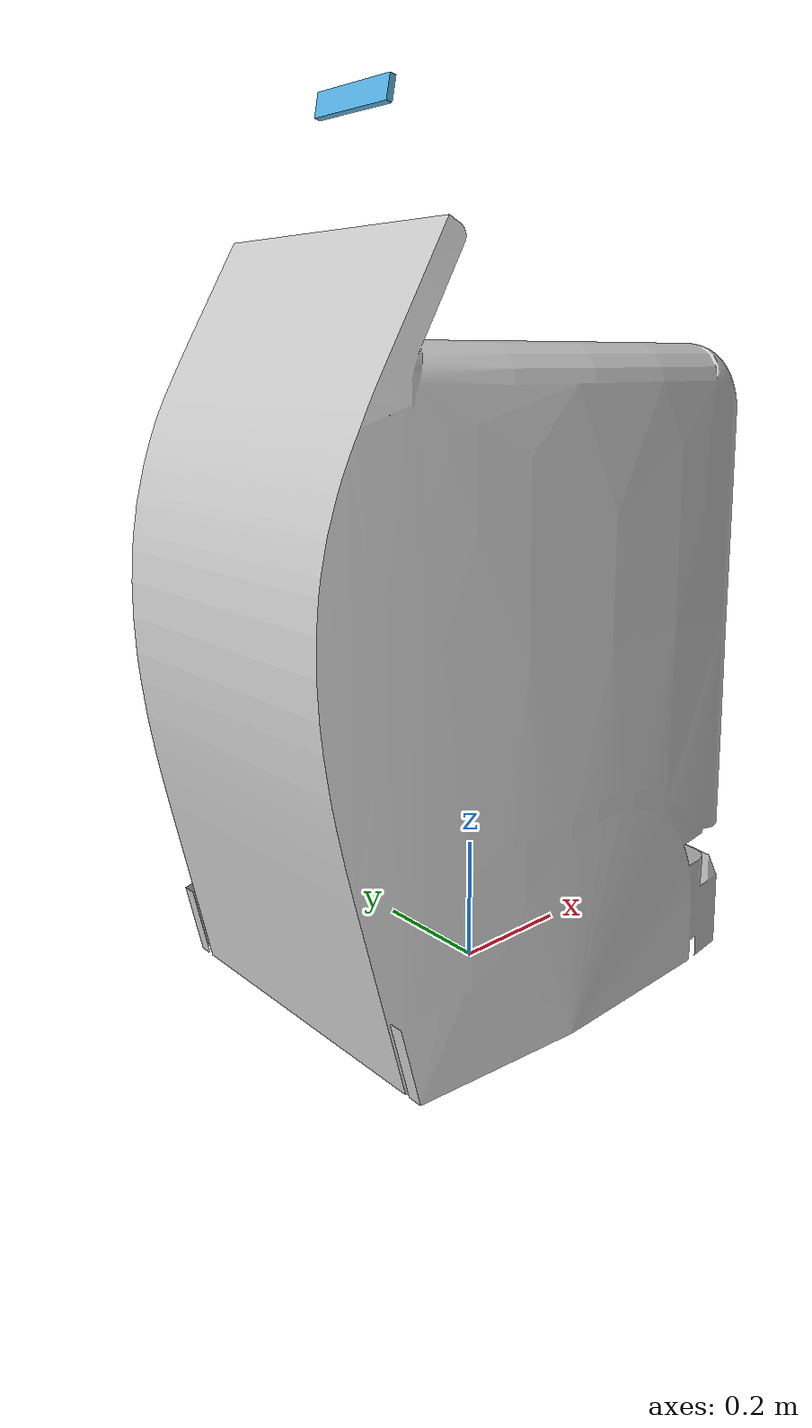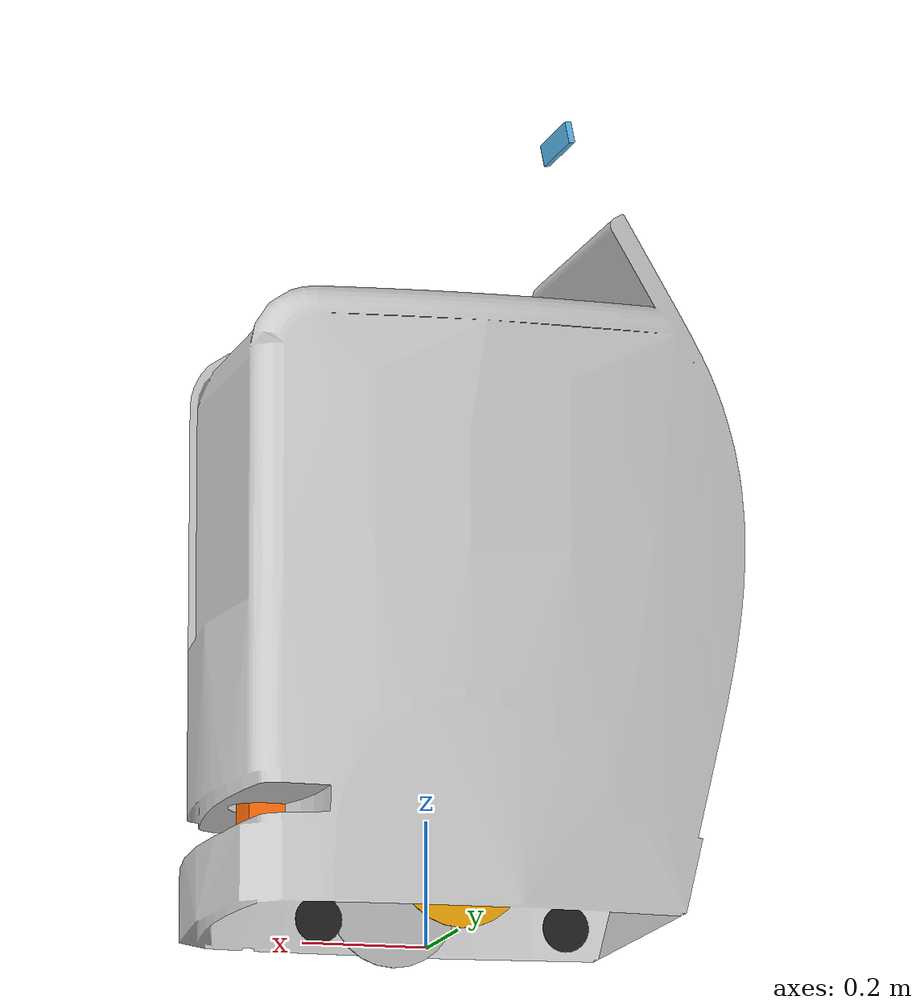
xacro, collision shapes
<?xml version="1.0"?>
<robot xmlns:xacro="http://ros.org/wiki/xacro" name="TransportBuddy" >

  <xacro:arg name="model_dir"   default="$(find tuw_gazebo_models)/models/platforms/TransportBuddy"/>
  <xacro:arg name="namespace"   default="TransportBuddy"/>
  <xacro:arg name="motor_plugin" default="diff_twist"/> <!-- diffdrive or iws. If something else is set, no plugin will be loaded-->

  <!-- Import Rviz colors -->
  <xacro:include filename="$(find tuw_gazebo_models)/models/materials.xacro" />

  <!-- Import platform -->
  <xacro:property name="model_dir" value="$(arg model_dir)/body"/>
  <xacro:include filename="${model_dir}/body.xacro"/>
  <xacro:sally_body name="chassis" parent="base_link"/>

  <!-- Import platform plugins -->
  <xacro:property name="model_dir"   value="$(arg model_dir)"/>
  <xacro:property name="namespace"   value="$(arg namespace)"/>
  <xacro:property name="motor_plugin" value="$(arg motor_plugin)"/>
  <xacro:include filename="${model_dir}/plugins.xacro" />

  <xacro:if value="${motor_plugin == 'diff_iws'}">
    <!-- Motor  plugin -->
    <xacro:iws_drive/>
    <!-- Joints plugin-->
    <xacro:iws_joints_state_publisher ns=""/>
    <xacro:iws_joints_state_publisher ns="${namespace}/ground_truth"/>
  </xacro:if>
  <xacro:if value="${motor_plugin == 'diff_twist'}">
    <!-- Motor  plugin -->
    <xacro:differential_drive/>
    <!-- Joints plugin -->
    <xacro:diff_joints_state_publisher ns=""/>
  </xacro:if>

  <!-- camera plugin -->
  <xacro:camera_zr300_rgb />

  <!-- Laser -->
  <xacro:property name="model_dir" value="$(find tuw_gazebo_models)/models/sensors/laser"/>
  <xacro:include filename="${model_dir}/Sick-LMS100.xacro"/>
  <xacro:laser name="laser0" frame_names="laser0" topic_names="laser0/scan" parent="top" xyz="0.25 0.0 -0.20" rpy="${pi} 0 0" driver="cpu" visualize="true"/>

  <!-- xyz="0.16 0 0.125" -->

</robot>

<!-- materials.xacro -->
<robot xmlns:xacro="http://ros.org/wiki/xacro">

  <material name="black">
    <color rgba="0.0 0.0 0.0 1.0"/>
  </material>

  <material name="blue">
    <color rgba="0.0 0.0 0.8 1.0"/>
  </material>

  <material name="light_blue">
    <color rgba="${100/255} ${134/255} ${213/255} 1.0"/>
  </material>

  <material name="green">
    <color rgba="0.0 0.8 0.0 1.0"/>
  </material>

  <material name="light_grey">
    <color rgba="0.5 0.5 0.5 1.0"/>
  </material>

  <material name="grey">
    <color rgba="0.2 0.2 0.2 1.0"/>
  </material>

  <material name="orange">
    <color rgba="${255/255} ${108/255} ${10/255} 1.0"/>
  </material>

  <material name="brown">
    <color rgba="${222/255} ${207/255} ${195/255} 1.0"/>
  </material>

  <material name="red">
    <color rgba="0.8 0.0 0.0 1.0"/>
  </material>

  <material name="white">
    <color rgba="1.0 1.0 1.0 1.0"/>
  </material>

</robot>

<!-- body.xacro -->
<robot xmlns:xacro="http://ros.org/wiki/xacro">

  <xacro:include filename="$(find tuw_gazebo_models)/models/inertia_tensors.xacro"/>
  <xacro:include filename="chassis.xacro"/>
  <xacro:include filename="wheel.xacro"/>
  <xacro:include filename="battery_block.xacro"/>
  <xacro:include filename="swivel.xacro"/>
  <xacro:include filename="zr300.xacro" />
  <xacro:property name="wheel_radius" value="0.104" />

  <xacro:macro name="sally_body" params="name parent">

    <!-- base_link -->
    <link name="${parent}"/>

    <!-- Camera -->
    <xacro:sensor_zr300 parent="${parent}">
      <origin xyz="-0.220 0 1.300" rpy="0 0.20 0"/>
    </xacro:sensor_zr300>

    <!-- Chassis -->
    <xacro:chassis name="${name}" parent="${parent}" xyz="0 0 0.068" rpy="0 0 0"/>

    <!-- Akku0 -->
    <xacro:battery_block name="battery0" parent="${name}" x="-0.14" y="0.00"  z="${0.13-0.068}" mass="2.5" />

    <!-- Wheels -->
    <xacro:property name="contact_data">
        <mu1 value="0.7"/>
	<mu2 value="0.7"/>
	<minDepth value="0.002"/>
	<!--kp value="1000000.0"/-->
	<!--kd value="10.0"/-->
    </xacro:property>
    <xacro:swivel side="front" parent="${parent}"  xyz=" 0.200 0    0.055" rpy="0 0 0">               <container> <xacro:insert_block name="contact_data"/> </container> </xacro:swivel>
    <xacro:swivel side="back"  parent="${parent}"  xyz="-0.200 0    0.055" rpy="0 0 0">               <container> <xacro:insert_block name="contact_data"/> </container> </xacro:swivel>
    <xacro:wheel  side="right" parent="${parent}"  xyz=" 0    -0.225 ${wheel_radius}" rpy="0 0 0" radius="${wheel_radius}"> <container> <xacro:insert_block name="contact_data"/> </container> </xacro:wheel>
    <xacro:wheel  side="left"  parent="${parent}"  xyz=" 0     0.225 ${wheel_radius}" rpy="0 0 0" radius="${wheel_radius}"> <container> <xacro:insert_block name="contact_data"/> </container> </xacro:wheel>

  </xacro:macro>
</robot>

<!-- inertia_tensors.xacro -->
<robot xmlns:xacro="http://ros.org/wiki/xacro">
  <xacro:property name="M_PI" value="3.1415926535897931" />

  <!-- Thanks to Martin Guenther
  see https://github.com/uos/uos_tools/blob/fuerte/uos_common_urdf/common.xacro and
  see http://answers.gazebosim.org/question/4372/the-inertia-matrix-explained/ -->
  <!-- see https://secure.wikimedia.org/wikipedia/en/wiki/List_of_moment_of_inertia_tensors -->

  <!-- #################### versions without origin #################### -->
  <xacro:macro name="sphere_inertial" params="radius mass">
    <inertial>
      <mass value="${mass}" />
      <origin xyz="0 0 0" />
      <inertia ixx="${0.4 * mass * radius * radius}" ixy="0.0" ixz="0.0"
        iyy="${0.4 * mass * radius * radius}" iyz="0.0"
        izz="${0.4 * mass * radius * radius}" />
    </inertial>
  </xacro:macro>

  <xacro:macro name="cylinder_inertial" params="radius length mass">
    <inertial>
      <mass value="${mass}" />
      <origin xyz="0 0 0" />
      <inertia ixx="${0.0833333 * mass * (3 * radius * radius + length * length)}" ixy="0.0" ixz="0.0"
        iyy="${0.0833333 * mass * (3 * radius * radius + length * length)}" iyz="0.0"
        izz="${0.5 * mass * radius * radius}" />
    </inertial>
  </xacro:macro>

  <xacro:macro name="box_inertial" params="x y z mass">
    <inertial>
      <mass value="${mass}" />
      <origin xyz="0 0 0" />
      <inertia ixx="${0.0833333 * mass * (y*y + z*z)}" ixy="0.0" ixz="0.0"
        iyy="${0.0833333 * mass * (x*x + z*z)}" iyz="0.0"
        izz="${0.0833333 * mass * (x*x + y*y)}" />
    </inertial>
  </xacro:macro>

  <!-- #################### versions with origin #################### -->
  <xacro:macro name="sphere_inertial_with_origin" params="radius mass *origin">
    <inertial>
      <mass value="${mass}" />
      <xacro:insert_block name="origin" />
      <inertia ixx="${0.4 * mass * radius * radius}" ixy="0.0" ixz="0.0"
        iyy="${0.4 * mass * radius * radius}" iyz="0.0"
        izz="${0.4 * mass * radius * radius}" />
    </inertial>
  </xacro:macro>

  <xacro:macro name="cylinder_inertial_with_origin" params="radius length mass xyz rpy">
    <inertial>
      <mass value="${mass}" />
      <origin xyz="${xyz}" rpy="${rpy}" />
      <inertia ixx="${0.0833333 * mass * (3 * radius * radius + length * length)}" ixy="0.0" ixz="0.0"
        iyy="${0.0833333 * mass * (3 * radius * radius + length * length)}" iyz="0.0"
        izz="${0.5 * mass * radius * radius}" />
    </inertial>
  </xacro:macro>

  <xacro:macro name="box_inertial_with_origin" params="x y z mass xyz">
    <inertial>
      <mass value="${mass}" />
      <origin xyz="${xyz}" />
      <inertia ixx="${0.0833333 * mass * (y*y + z*z)}" ixy="0.0" ixz="0.0"
        iyy="${0.0833333 * mass * (x*x + z*z)}" iyz="0.0"
        izz="${0.0833333 * mass * (x*x + y*y)}" />
    </inertial>
  </xacro:macro>

</robot>

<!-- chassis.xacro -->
<robot xmlns:xacro="http://ros.org/wiki/xacro">
  <xacro:property name="M_PI" value="3.1415926535897931" />

  <xacro:macro name="chassis" params="name parent xyz rpy model_dir:=^">

    <material name="SallyWhite">
	<color rgba="${200/255} ${200/255} ${200/255} 1.0"/>
    </material>

  <!-- Chassis -->
  <joint name="${parent}_${name}_joint" type="fixed">
    <origin xyz="${xyz}" rpy="${rpy}"/>
    <parent link="${parent}"/>
    <child link="${name}"/>
  </joint>
  <link name="${name}">
    <visual>
      <origin xyz="-0.0 0 -0.07" rpy="0 0 ${M_PI}"/>
      <geometry>
	<mesh filename="file://${model_dir}/meshes/TransportBuddy.dae"/>
      </geometry>
      <material name="SallyWhite">
      </material>
    </visual>
    <collision>
      <origin xyz="-0.0 0 -0.07" rpy="0 0 ${M_PI}"/>
      <geometry>
	  <mesh filename="file://${model_dir}/meshes/TransportBuddy.dae"/>>
      </geometry>
    </collision>
    <box_inertial_with_origin x="0.35" y="0.25"  z="0.17" mass="9.0"> <origin xyz="-0.04 0 0.15" rpy="0 0 0"/> </box_inertial_with_origin>
  </link>

  <!-- Top -->
  <joint name="${name}_top_joint" type="fixed">
    <origin xyz="0 0 0.5" rpy="0 0 0"/>
    <parent link="${parent}"/>
    <child link="top"/>
  </joint>
  <link name="top">
  </link>
  <gazebo reference="top">
    <material value="Gazebo/Black"/>
  </gazebo>

  </xacro:macro>

</robot>

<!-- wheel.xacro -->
<robot
  xmlns:xacro="http://ros.org/wiki/xacro">
  <xacro:property name="M_PI" value="3.1415926535897931" />

  <xacro:macro name="wheel" params="side parent xyz rpy radius model_dir:=^ **contact_data">

    <!-- Wheel -->
    <joint name="${side}_wheel_joint" type="continuous">
        <origin xyz="${xyz}" rpy="${rpy}"/>
        <axis xyz="0 1 0"/>
        <parent link="${parent}"/>
        <child link="${side}_wheel"/>
    </joint>
    <link name="${side}_wheel">
        <cylinder_inertial_with_origin radius="${radius}" length="0.03" mass="0.5"> <origin xyz="0 0 0" rpy="${pi/2} 0 0"/> </cylinder_inertial_with_origin>
        <visual>
            <origin xyz="0 0 0.0" rpy="${pi/2} 0 0"/>
            <geometry> <cylinder radius="${radius}" length="0.03"/> </geometry>
        </visual>
        <collision>
            <origin xyz="0 0 0.0" rpy="${pi/2} 0 0"/>
            <geometry>
                <cylinder radius="${radius}" length="0.001"/>
            </geometry>
        </collision>
    </link>

    <gazebo reference="${side}_wheel">
        <material value="Gazebo/Black"/>
        <xacro:insert_block name="contact_data"/>
    </gazebo>
  </xacro:macro>

</robot>

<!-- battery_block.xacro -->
<robot xmlns:xacro="http://ros.org/wiki/xacro">
  <xacro:property name="M_PI" value="3.1415926535897931" />

  <xacro:macro name="battery_block" params="name parent x y z mass">

  <joint name="${parent}_${name}_joint" type="fixed">
    <origin xyz="${x} ${y} ${z}" rpy="0 0 0"/>
    <parent link="${parent}"/>
    <child link="${name}"/>
  </joint>
  <link name="${name}">
    <visual name="${name}_visual">
      <origin xyz="0 0 0" rpy="0 0 0"/>
      <geometry name="${name}_geometry">
        <box size="0.151 0.065 0.094"/>
      </geometry>
      <material name="${name}_material">
        <color rgba="0.038 0.038 0.038 1.0"/>
      </material>
    </visual>
    <box_inertial x="0.151" y="0.065" z="0.094" mass="${mass}"/>
  </link>
  <gazebo reference="${name}">
    <material value="Gazebo/Black"/>
  </gazebo>

  </xacro:macro>

</robot>

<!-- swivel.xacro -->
<robot xmlns:xacro="http://ros.org/wiki/xacro">
  <xacro:property name="M_PI" value="3.1415926535897931" />

  <xacro:macro name="swivel" params="side parent xyz rpy model_dir:=^ **contact_data">

  <!-- Swivel -->
  <joint name="${side}_swivel_joint" type="continuous">
    <origin xyz="${xyz}" rpy="${rpy}"/>
    <axis xyz="0 0 1"/>
    <anchor xyz="0 0 0"/>
    <!--limit effort="100" velocity="100" k_velocity="0"/-->
    <joint_properties damping="0.1" friction="0.0"/>
    <parent link="${parent}"/>
    <child link="${side}_swivel"/>
  </joint>
  <link name="${side}_swivel">
    <box_inertial_with_origin x="0.07" y="0.07" z="0.05" mass="0.1"> <origin xyz="0 0 0" rpy="0 0 0"/> </box_inertial_with_origin>
    <visual>
      <origin xyz="0 0 0" rpy="0 0 0"/>
      <geometry>
        <mesh filename="file://${model_dir}/meshes/swivel.stl"/>
      </geometry>
      <material name="swivel">
        <color rgba="0.5 0.5 0.5 1"/>
      </material>
    </visual>
    <collision>
      <origin xyz="0 0 0" rpy="0 0 0"/>
      <geometry>
        <box size="0.001 0.001 0.001"/>
      </geometry>
    </collision>
  </link>
  <gazebo reference="swivel">
    <material value="Gazebo/Grey"/>
  </gazebo>

  <!-- Center Wheel -->
  <joint name="${side}_swivel_wheel_joint" type="continuous">
    <origin xyz="-0.026 0 -0.016" rpy="0 0 0"/>
    <axis xyz="0 1 0"/>
    <anchor xyz="0 0 0"/>
    <!--limit effort="100" velocity="100" k_velocity="0"/-->
    <joint_properties damping="0.0" friction="0.0"/>
    <parent link="${side}_swivel"/>
    <child link="${side}_center_wheel"/>
  </joint>
  <link name="${side}_center_wheel">
    <cylinder_inertial_with_origin radius="0.0375" length="0.03" mass="0.1"> <origin xyz="0 0 0" rpy="${pi/2} 0 0"/> </cylinder_inertial_with_origin>
    <visual>
      <origin xyz="0 0 0" rpy="0 0 0"/>

      <geometry>
        <mesh filename="file://${model_dir}/meshes/center_wheel.stl"/>
      </geometry>
      <material name="WheelBlack">
        <color rgba="0.117 0.117 0.117 1"/>
      </material>
    </visual>
    <collision>
      <origin xyz="0 0 0" rpy="${-3.1415927/2.0} 0 0"/>
      <geometry>
        <cylinder radius="0.0375" length="0.001"/> <!--radius="0.0375"-->
      </geometry>
    </collision>
  </link>
  <gazebo reference="center_wheel">
    <material value="Gazebo/Black"/>
    <xacro:insert_block name="contact_data"/>
  </gazebo>

  </xacro:macro>

</robot>

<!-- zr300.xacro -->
<!--
License: Apache 2.0. See LICENSE file in root directory.
Copyright(c) 2017 Intel Corporation. All Rights Reserved
-->

<robot name="sensor_zr300" xmlns:xacro="http://ros.org/wiki/xacro">
  <xacro:property name="M_PI" value="3.1415926535897931" />

  <xacro:property name="zr300_cam_rgb_px" value="-0.003"/>
  <xacro:property name="zr300_cam_rgb_py" value="-0.029"/>
  <xacro:property name="zr300_cam_rgb_pz" value="0.028"/>

  <xacro:property name="zr300_cam_rgb_to_depth_offset" value="0.023"/>
  <xacro:property name="zr300_cam_rgb_to_fisheye_offset" value="0.088"/>

  <xacro:property name="zr300_cam_width" value="0.155"/>
  <xacro:property name="zr300_cam_height" value="0.035"/>
  <xacro:property name="zr300_cam_depth" value="0.01"/>

  <xacro:macro name="sensor_zr300" params="parent *origin">

    <!-- camera body, with origin at bottom screw mount -->
    <joint name="camera_joint" type="fixed">
      <xacro:insert_block name="origin" />
      <parent link="${parent}"/>
      <child link="camera_link" />
    </joint>

    <link name="camera_link">
      <visual>
      <origin xyz="-0.005 0 0" rpy="${M_PI/2} 0 ${M_PI/2}"/>
        <geometry>
          <mesh filename="file://${model_dir}/meshes/zr300.dae" />
        </geometry>
      </visual>
      <collision>
        <origin xyz="0.0 0.0 ${zr300_cam_height/2}" rpy="0 0 0"/>
        <geometry>
        <box size="${zr300_cam_depth} ${zr300_cam_width} ${zr300_cam_height}"/>
        </geometry>
      </collision>
      <inertial>
        <!-- The following are not reliable values, and should not be used for modeling -->
        <mass value="0.564" />
        <origin xyz="0 0 0" />
        <inertia ixx="0.003881243" ixy="0.0" ixz="0.0" iyy="0.000498940" iyz="0.0" izz="0.003879257" />
      </inertial>
    </link>

    <!-- camera rgb joints and links -->
    <joint name="camera_rgb_joint" type="fixed">
      <origin xyz="${zr300_cam_rgb_px} ${zr300_cam_rgb_py} ${zr300_cam_rgb_pz}" rpy="0 0 0"/>
      <parent link="camera_link"/>
      <child link="camera_rgb_frame" />
    </joint>
    <link name="camera_rgb_frame"/>

    <joint name="camera_rgb_optical_joint" type="fixed">
      <origin xyz="0 0 0" rpy="${-M_PI/2} 0 ${-M_PI/2}" />
      <parent link="camera_rgb_frame" />
      <child link="camera_rgb_optical_frame" />
    </joint>
    <link name="camera_rgb_optical_frame"/>

    <!-- camera depth joints and links -->
    <joint name="camera_depth_joint" type="fixed">
      <origin xyz="0 ${zr300_cam_rgb_to_depth_offset} 0" rpy="0 0 0" />
      <parent link="camera_rgb_frame" />
      <child link="camera_depth_frame" />
    </joint>
    <link name="camera_depth_frame"/>

    <joint name="camera_depth_optical_joint" type="fixed">
      <origin xyz="0 0 0" rpy="${-M_PI/2} 0 ${-M_PI/2}" />
      <parent link="camera_depth_frame" />
      <child link="camera_depth_optical_frame" />
    </joint>
    <link name="camera_depth_optical_frame"/>

    <!-- camera fisheye joints and links -->
    <joint name="camera_fisheye_joint" type="fixed">
      <origin xyz="0 ${zr300_cam_rgb_to_fisheye_offset} 0" rpy="0 0 0" />
      <parent link="camera_rgb_frame" />
      <child link="camera_fisheye_frame" />
    </joint>
    <link name="camera_fisheye_frame"/>

    <joint name="camera_fisheye_optical_joint" type="fixed">
      <origin xyz="0 0 0" rpy="${-M_PI/2} 0 ${-M_PI/2}" />
      <parent link="camera_fisheye_frame" />
      <child link="camera_fisheye_optical_frame" />
    </joint>
    <link name="camera_fisheye_optical_frame"/>
  </xacro:macro>
</robot>

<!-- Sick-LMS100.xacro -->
<robot xmlns:xacro="http://ros.org/wiki/xacro">

<!-- Front Laser -->
<xacro:macro name="laser" params="name frame_names topic_names parent xyz rpy driver:=cpu visualize:=true model_dir:=^">

    <xacro:if value="${driver == 'gpu'}">
      <xacro:property name="sensor_type" value="gpu_ray"/>
      <xacro:property name="driver_type" value="libgazebo_ros_gpu_laser.so"/>
    </xacro:if>
    <xacro:if value="${driver == 'cpu'}">
      <xacro:property name="sensor_type" value="ray"/>
      <xacro:property name="driver_type" value="libgazebo_ros_laser.so"/>
    </xacro:if>

    <joint name="${parent}_${name}_chassis_joint" type="fixed">
	<axis xyz="0 0 1" />
	<origin xyz="${xyz}" rpy="${rpy}"/>
	<parent link="${parent}"/>
	<child link="${name}_chassis"/>
    </joint>

    <material name="SickBlue">
	<color rgba="${255/255} ${108/255} ${10/255} 1.0"/>
    </material>

    <link name="${name}_chassis">
	<collision>
	    <origin xyz="0 0 0.0751" rpy="0 0 0"/>
	    <geometry>
		<box size="0.094 0.094 0.152"/>
	    </geometry>
	</collision>
	<visual>
	    <geometry>
		<mesh filename="file://${model_dir}/meshes/Sick-LMS100.dae"/>
	    </geometry>
	    <material name="SickBlue"/>
	</visual>
	<xacro:box_inertial x="0.094" y="0.094"  z="0.152" mass="1.1" />
    </link>

    <joint name="${name}_chassis_${name}_joint" type="fixed">
	<axis xyz="0 0 1" />
	<origin xyz="0 0 0.115" rpy="0 0 0"/>
	<parent link="${name}_chassis"/>
	<child link="${name}"/>
    </joint>

    <link name="${name}"/>
    <gazebo reference="${name}">
	<sensor name="${name}" type="${sensor_type}">
	    <pose>0 0 0 0 0 0</pose>
	    <update_rate>25</update_rate>
	    <always_on>1</always_on>
	    <visualize>${visualize}</visualize>
	    <ray>
		<scan>
		    <horizontal>
			<!-- Sick-LMS100 has  683 steps with 0.35139 Degree resolution-->
			<resolution>1</resolution>
			<max_angle>2.356000000</max_angle> <min_angle>-2.356000000</min_angle> <samples>1080</samples>     <!-- 135 to -135 Degree -->
			<!-- 120 to -120 Degree -->
			<!-- 100 to -100 Degree -->
			<!-- 110 to -110 Degree -->
		    </horizontal>
		</scan>
		<range>
		    <min>0.15</min>
		    <max>20.0</max>
		    <resolution>0.01</resolution>
		</range>
		<noise>
		    <type>gaussian</type>
		    <mean>0.0</mean>
		    <stddev>0.005</stddev>
		</noise>
	    </ray>

	    <plugin name="gazebo_ros_laser_SICK_driver" filename="${driver_type}" >
		<rosDebugLevel>Debug</rosDebugLevel>
		<robotNamespace></robotNamespace>
		<topicName>${topic_names}</topicName>
		<frameName>${frame_names}</frameName>
		<rangeMin>0.4</rangeMin>
	    </plugin>
	</sensor>
    </gazebo>
</xacro:macro>

</robot>
